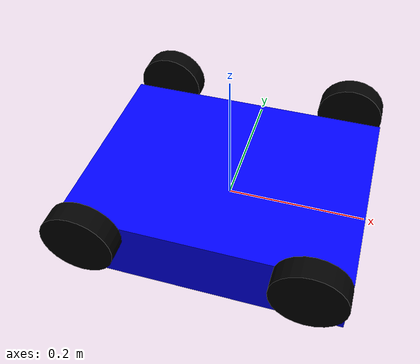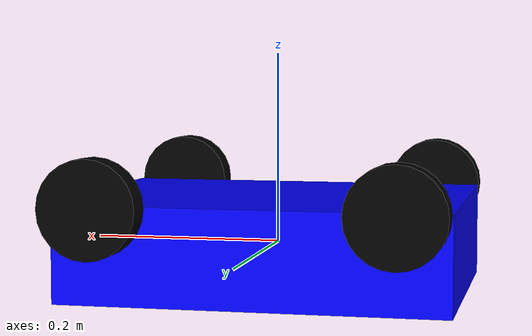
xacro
<?xml version="1.0"?>
<robot name="diff_drive_bot" xmlns:xacro="http://www.ros.org/wiki/xacro">

  <!-- Include property and material files -->
  <xacro:include filename="$(find four_wheel_bot_pkg)/urdf/properties.xacro"/>
  <xacro:include filename="$(find four_wheel_bot_pkg)/urdf/materials.xacro"/>

  <!-- Base link (chassis) -->
  <link name="base_link">
    <visual>
      <origin xyz="0 0 0" rpy="0 0 0"/>
      <geometry>
        <box size="${chassis_length} ${chassis_width} ${chassis_height}"/>
      </geometry>
      <material name="blue"/>
    </visual>
    <collision>
      <origin xyz="0 0 0" rpy="0 0 0"/>
      <geometry>
        <box size="${chassis_length} ${chassis_width} ${chassis_height}"/>
      </geometry>
    </collision>
    <inertial>
      <origin xyz="0 0 0" rpy="0 0 0"/>
      <mass value="${chassis_mass}"/>
      <xacro:box_inertia m="${chassis_mass}" l="${chassis_length}" w="${chassis_width}" h="${chassis_height}"/>
    </inertial>
  </link>

  <!-- Wheel macro for differential drive -->
  <xacro:macro name="wheel" params="wheel_name x_offset y_offset">
    <link name="${wheel_name}">
      <visual>
        <origin xyz="0 0 0" rpy="1.5708 0 0"/>
        <geometry>
          <cylinder radius="${wheel_radius}" length="${wheel_thickness}"/>
        </geometry>
        <material name="black"/>
      </visual>
      <collision>
        <origin xyz="0 0 0" rpy="1.5708 0 0"/>
        <geometry>
          <cylinder radius="${wheel_radius}" length="${wheel_thickness}"/>
        </geometry>
      </collision>
      <inertial>
        <origin xyz="0 0 0" rpy="1.5708 0 0"/>
        <mass value="${wheel_mass}"/>
        <xacro:cylinder_inertia m="${wheel_mass}" r="${wheel_radius}" h="${wheel_thickness}"/>
      </inertial>
    </link>

    <joint name="${wheel_name}_joint" type="continuous">
      <parent link="base_link"/>
      <child link="${wheel_name}"/>
      <origin xyz="${x_offset} ${y_offset} ${wheel_offset_z}" rpy="0 0 0"/>
      <axis xyz="0 1 0"/>
    </joint>
  </xacro:macro>

  <!-- Create wheels -->
  <xacro:wheel wheel_name="front_left_wheel" x_offset="${wheel_offset_x_front}" y_offset="${wheel_offset_y}"/>
  <xacro:wheel wheel_name="front_right_wheel" x_offset="${wheel_offset_x_front}" y_offset="-${wheel_offset_y}"/>
  <xacro:wheel wheel_name="rear_left_wheel" x_offset="${wheel_offset_x_rear}" y_offset="${wheel_offset_y}"/>
  <xacro:wheel wheel_name="rear_right_wheel" x_offset="${wheel_offset_x_rear}" y_offset="-${wheel_offset_y}"/>

  <!-- Gazebo plugins for differential drive -->
  <gazebo>
    <plugin filename="gz-sim-diff-drive-system" name="gz::sim::systems::DiffDrive">
      <left_joint>front_left_wheel_joint</left_joint>
      <left_joint>rear_left_wheel_joint</left_joint>
      <right_joint>front_right_wheel_joint</right_joint>
      <right_joint>rear_right_wheel_joint</right_joint>
      <wheel_separation>${2*wheel_offset_y}</wheel_separation>
      <wheel_radius>${wheel_radius}</wheel_radius>
      <odom_publish_frequency>50</odom_publish_frequency>
      <topic>cmd_vel</topic>
      <odom_topic>odom</odom_topic>
      <frame_id>odom</frame_id>
      <child_frame_id>base_link</child_frame_id>
    </plugin>
  </gazebo>

  <!-- Joint state publisher plugin -->
  <gazebo>
    <plugin filename="gz-sim-joint-state-publisher-system" name="gz::sim::systems::JointStatePublisher">
    </plugin>
  </gazebo>

  <!-- Gazebo materials -->
  <gazebo reference="base_link">
    <material>Gazebo/Blue</material>
  </gazebo>

  <gazebo reference="front_left_wheel">
    <material>Gazebo/DarkGrey</material>
  </gazebo>

  <gazebo reference="front_right_wheel">
    <material>Gazebo/DarkGrey</material>
  </gazebo>

  <gazebo reference="rear_left_wheel">
    <material>Gazebo/DarkGrey</material>
  </gazebo>

  <gazebo reference="rear_right_wheel">
    <material>Gazebo/DarkGrey</material>
  </gazebo>

</robot>

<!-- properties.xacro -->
<robot xmlns:xacro="http://www.ros.org/wiki/xacro">

  <!-- Robot properties -->
  <xacro:property name="chassis_length" value="0.4"/>
  <xacro:property name="chassis_width" value="0.3"/>
  <xacro:property name="chassis_height" value="0.1"/>
  <xacro:property name="chassis_mass" value="2.0"/>

  <xacro:property name="wheel_radius" value="0.05"/>
  <xacro:property name="wheel_thickness" value="0.03"/>
  <xacro:property name="wheel_mass" value="0.2"/>
  <xacro:property name="wheel_offset_z" value="0.05"/>

  <!-- Wheel positions relative to chassis center -->
  <xacro:property name="wheel_offset_x_front" value="0.15"/>
  <xacro:property name="wheel_offset_x_rear" value="-0.15"/>
  <xacro:property name="wheel_offset_y" value="0.175"/>

  <!-- Inertial macros -->
  <xacro:macro name="box_inertia" params="m l w h">
    <inertia ixx="${m*(h*h+l*l)/12}" ixy="0" ixz="0"
             iyy="${m*(w*w+l*l)/12}" iyz="0"
             izz="${m*(w*w+h*h)/12}"/>
  </xacro:macro>

  <xacro:macro name="cylinder_inertia" params="m r h">
    <inertia ixx="${m*(3*r*r+h*h)/12}" ixy="0" ixz="0"
             iyy="${m*(3*r*r+h*h)/12}" iyz="0"
             izz="${m*r*r/2}"/>
  </xacro:macro>

</robot>

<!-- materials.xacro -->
<robot xmlns:xacro="http://www.ros.org/wiki/xacro">

  <!-- Material definitions -->
  <material name="blue">
    <color rgba="0.0 0.0 1.0 1.0"/>
  </material>

  <material name="red">
    <color rgba="1.0 0.0 0.0 1.0"/>
  </material>

  <material name="green">
    <color rgba="0.0 1.0 0.0 1.0"/>
  </material>

  <material name="black">
    <color rgba="0.0 0.0 0.0 1.0"/>
  </material>

  <material name="white">
    <color rgba="1.0 1.0 1.0 1.0"/>
  </material>

  <material name="orange">
    <color rgba="1.0 0.423529411765 0.0392156862745 1.0"/>
  </material>

  <material name="grey">
    <color rgba="0.5 0.5 0.5 1.0"/>
  </material>

</robot>
